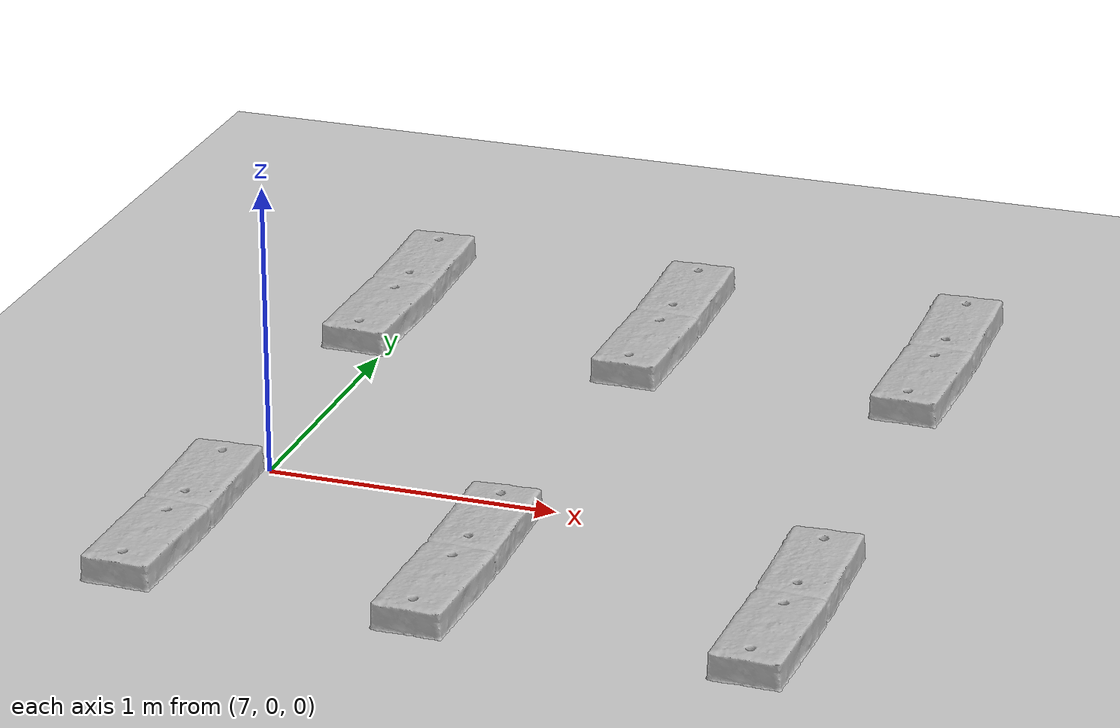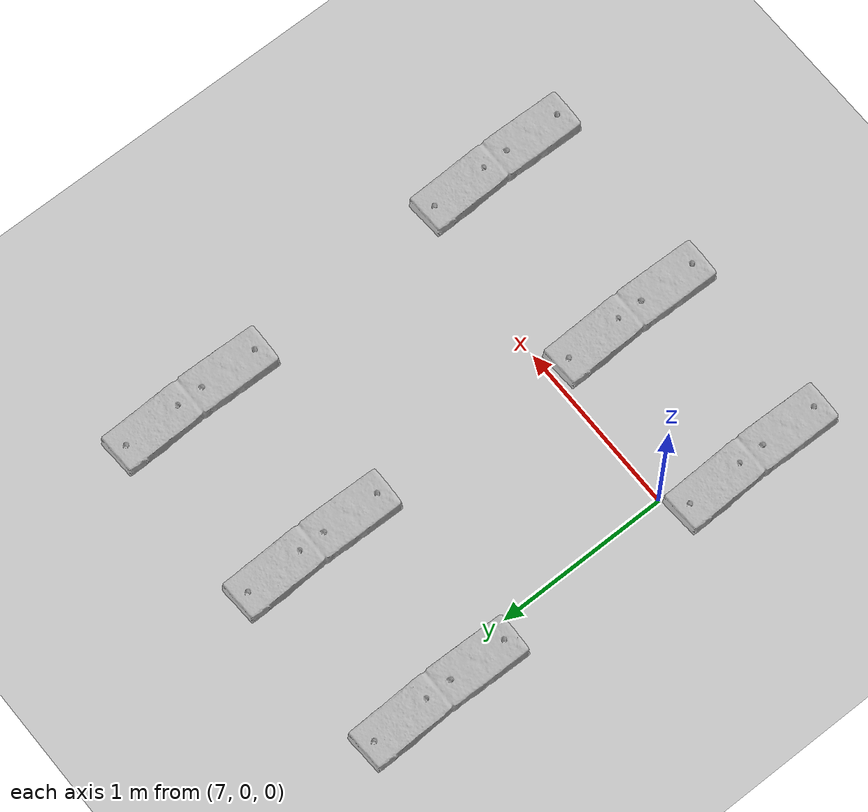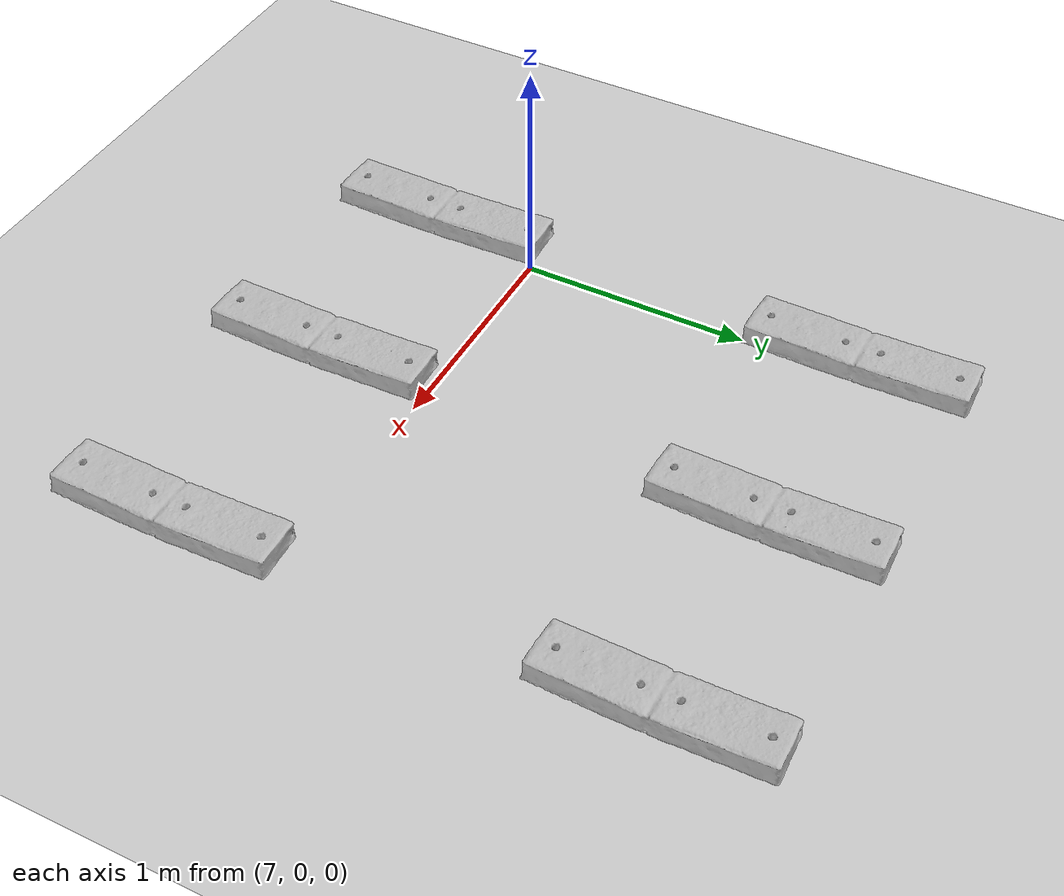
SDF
<sdf version="1.7">
 <world name="default">
  <physics type="ode">
   <type>world</type>
   <max_step_size>0.002</max_step_size>
   <real_time_update_rate>500</real_time_update_rate>
   <iters>500</iters>
  </physics>
  <include><uri>model://sun</uri></include>
  <include><uri>model://ground_plane</uri></include>
  <model name="collision_block">
   <static>1</static>
   <link name="collision_block">
    <pose>0 0 0 1.57 0 3.1415</pose>
    <collision name="collision_block_collision">
     <geometry>
      <mesh><uri>model://collision_block/meshes/collision_block.obj</uri><scale>1 1 1</scale></mesh>
     </geometry>
     <surface><friction><ode><mu>1.5</mu><mu2>1</mu2></ode></friction></surface>
    </collision>
    <visual name="collision_block_visual">
     <cast_shadows>0</cast_shadows>
     <geometry>
      <mesh><uri>model://collision_block/meshes/collision_block.obj</uri><scale>1 1 1</scale></mesh>
     </geometry>
    </visual>
   </link>
   <pose>6.85973 -0.603828 0 0 -0 1.56899</pose>
  </model>
  <model name="collision_block_clone">
   <static>1</static>
   <link name="collision_block">
    <pose>0 0 0 1.57 0 3.1415</pose>
    <collision name="collision_block_collision">
     <geometry>
      <mesh><uri>model://collision_block/meshes/collision_block.obj</uri><scale>1 1 1</scale></mesh>
     </geometry>
     <surface><friction><ode><mu>1.5</mu><mu2>1</mu2></ode></friction></surface>
    </collision>
    <visual name="collision_block_visual">
     <cast_shadows>0</cast_shadows>
     <geometry>
      <mesh><uri>model://collision_block/meshes/collision_block.obj</uri><scale>1 1 1</scale></mesh>
     </geometry>
    </visual>
   </link>
   <pose>6.88761 1.3807 0 0 -0 1.56899</pose>
  </model>
  <model name="collision_block_clone_0">
   <static>1</static>
   <link name="collision_block">
    <pose>0 0 0 1.57 0 3.1415</pose>
    <collision name="collision_block_collision">
     <geometry>
      <mesh><uri>model://collision_block/meshes/collision_block.obj</uri><scale>1 1 1</scale></mesh>
     </geometry>
     <surface><friction><ode><mu>1.5</mu><mu2>1</mu2></ode></friction></surface>
    </collision>
    <visual name="collision_block_visual">
     <cast_shadows>0</cast_shadows>
     <geometry>
      <mesh><uri>model://collision_block/meshes/collision_block.obj</uri><scale>1 1 1</scale></mesh>
     </geometry>
    </visual>
   </link>
   <pose>7.8409 -0.626883 0 0 -0 1.56899</pose>
  </model>
  <model name="collision_block_clone_1">
   <static>1</static>
   <link name="collision_block">
    <pose>0 0 0 1.57 0 3.1415</pose>
    <collision name="collision_block_collision">
     <geometry>
      <mesh><uri>model://collision_block/meshes/collision_block.obj</uri><scale>1 1 1</scale></mesh>
     </geometry>
     <surface><friction><ode><mu>1.5</mu><mu2>1</mu2></ode></friction></surface>
    </collision>
    <visual name="collision_block_visual">
     <cast_shadows>0</cast_shadows>
     <geometry>
      <mesh><uri>model://collision_block/meshes/collision_block.obj</uri><scale>1 1 1</scale></mesh>
     </geometry>
    </visual>
   </link>
   <pose>7.87674 1.39617 0 0 -0 1.56899</pose>
  </model>
  <model name="collision_block_clone_2">
   <static>1</static>
   <link name="collision_block">
    <pose>0 0 0 1.57 0 3.1415</pose>
    <collision name="collision_block_collision">
     <geometry>
      <mesh><uri>model://collision_block/meshes/collision_block.obj</uri><scale>1 1 1</scale></mesh>
     </geometry>
     <surface><friction><ode><mu>1.5</mu><mu2>1</mu2></ode></friction></surface>
    </collision>
    <visual name="collision_block_visual">
     <cast_shadows>0</cast_shadows>
     <geometry>
      <mesh><uri>model://collision_block/meshes/collision_block.obj</uri><scale>1 1 1</scale></mesh>
     </geometry>
    </visual>
   </link>
   <pose>8.92019 -0.618769 0 0 -0 1.56899</pose>
  </model>
  <model name="collision_block_clone_3">
   <static>1</static>
   <link name="collision_block">
    <pose>0 0 0 1.57 0 3.1415</pose>
    <collision name="collision_block_collision">
     <geometry>
      <mesh><uri>model://collision_block/meshes/collision_block.obj</uri><scale>1 1 1</scale></mesh>
     </geometry>
     <surface><friction><ode><mu>1.5</mu><mu2>1</mu2></ode></friction></surface>
    </collision>
    <visual name="collision_block_visual">
     <cast_shadows>0</cast_shadows>
     <geometry>
      <mesh><uri>model://collision_block/meshes/collision_block.obj</uri><scale>1 1 1</scale></mesh>
     </geometry>
    </visual>
   </link>
   <pose>8.86969 1.40161 0 0 -0 1.56899</pose>
  </model>
 </world>
</sdf>
